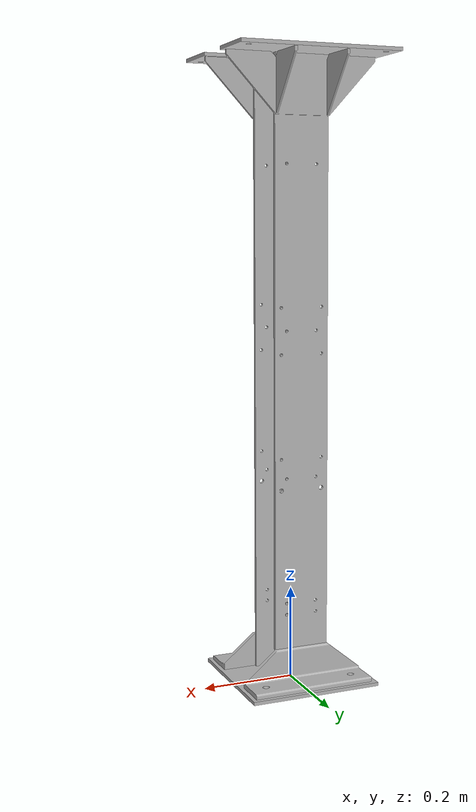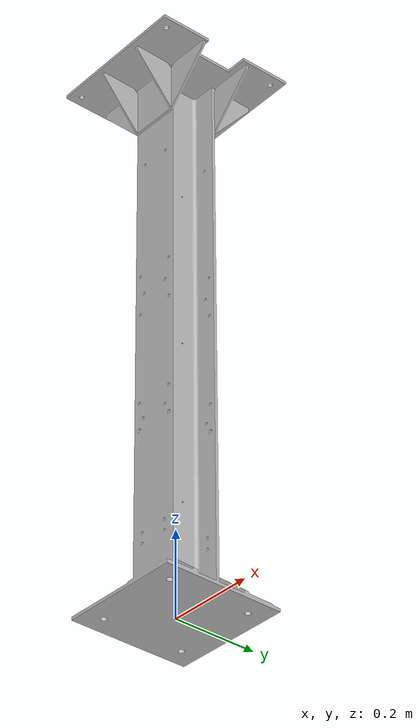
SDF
<?xml version='1.0'?>
<sdf version='1.4'>
  <model name="FGAG2004">
 <static>false</static>
 <link name="mesh_link">
	<inertial>
            <mass>100.0</mass>
 	</inertial>
        <visual name="visual">
        <geometry>
            <mesh><uri>model://FGAG2004/meshes/FGAG2004.stl</uri></mesh>
          </geometry>
        </visual>
        <collision name="collision">
          <geometry>
            <mesh><uri>model://FGAG2004/meshes/FGAG2004.stl</uri></mesh>
          </geometry>
        </collision>
      </link>
      <joint name='anchor' type='fixed'>
        <child>mesh_link</child>
        <parent>world</parent>
      </joint>
  </model>
</sdf>
